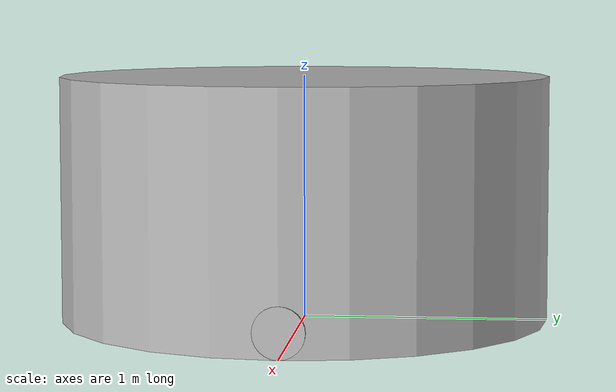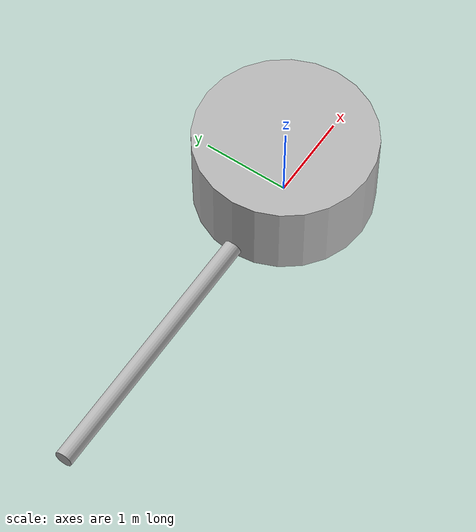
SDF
<?xml version="1.0" ?>
<sdf version="1.5">
    <model name = "my_robot">
    <static>false</static>
    <pose>0.0 0.0 0.0 0.0 0.0 0.0 </pose>

        <link name = "base_footprint"/>
        <!--Base-->
        <link name = "base_link">
            <inertial>
                <pose>0 0 0.5 0 0 0</pose>
                <inertia>
                    <ixx>0.33</ixx>
                    <iyy>0.33</iyy>
                    <izz>0.50</izz>
                    <ixy>0.00</ixy>
                    <iyz>0.00</iyz>
                    <izx>0.00</izx>
                </inertia>
                <mass>1.0</mass>
            </inertial>

            <collision name = "base_collision">
                <pose>0 0 0.5 0 0 0</pose>
                <geometry>
                    <cylinder>
                        <radius>1.0</radius>
                        <length>1.0</length>
                    </cylinder>
                </geometry>
            </collision>

            <visual name = "base_visual">
                <pose>0 0 0.5 0 0 0</pose>
                <geometry>
                    <cylinder>
                        <radius>1.0</radius>
                        <length>1.0</length>
                    </cylinder>
                </geometry>
            </visual>
        </link>

        <link name = "right_leg">
            <pose>1.0 0 0.1 0 -1.57 0</pose>
            <inertial>
                <pose>0 0 2.5 0 0 0</pose>
                <inertia>
                    <ixx>0.33</ixx>
                    <iyy>0.33</iyy>
                    <izz>0.50</izz>
                    <ixy>0.00</ixy>
                    <iyz>0.00</iyz>
                    <izx>0.00</izx>
                </inertia>
                <mass>1.0</mass>
            </inertial>

            <collision name = "right_leg_collision">
                <pose>0 0 2.5 0 0 0</pose>
                <geometry>
                    <cylinder>
                        <radius>0.1</radius>
                        <length>5.0</length>
                    </cylinder>
                </geometry>
            </collision>

            <visual name = "right_leg_visual">
                <pose>0 0 2.5 0 0 0</pose>
                <geometry>
                    <cylinder>
                        <radius>0.1</radius>
                        <length>5.0</length>
                    </cylinder>
                </geometry>
            </visual>
        </link>
        <!--Joint-->
        <joint name = "right_leg_joint" type = "ball">
            <pose>1 0 0 0.1 -1.57 0</pose>
            <parent>base_link</parent>
            <child>right_leg</child>
            <axis>
                <xyz>0 1 0</xyz>
            </axis>
            <axis2>
                <xyz>0 0 1</xyz>
            </axis2>
        </joint>
    </model>
</sdf>
